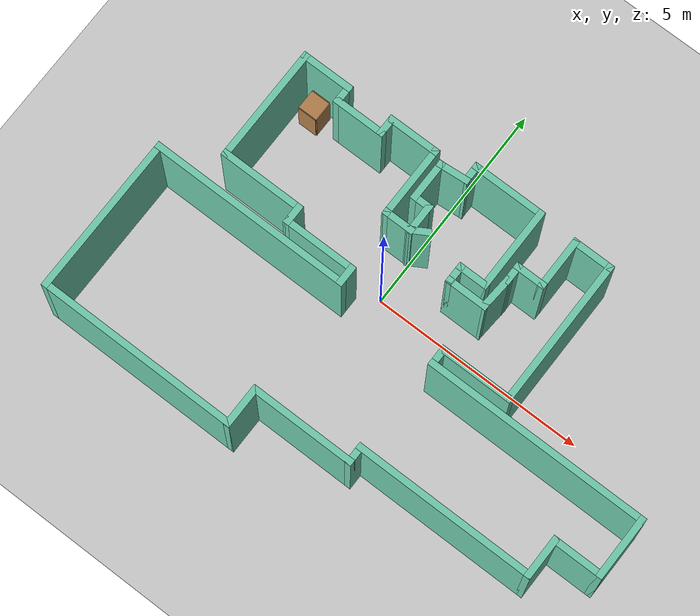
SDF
<sdf version="1.6">
 <world name="default">
  <light name="sun" type="directional">
   <pose>0 0 10 0 -0 0</pose>
   <diffuse>0.8 0.8 0.8 1</diffuse>
   <specular>0.2 0.2 0.2 1</specular>
   <attenuation>
    <range>1000</range>
    <constant>0.9</constant>
    <linear>0.01</linear>
    <quadratic>0.001</quadratic>
   </attenuation>
   <direction>-0.5 0.1 -0.9</direction>
  </light>
  <model name="ground_plane">
   <static>1</static>
   <link name="link">
    <collision name="collision">
     <geometry><plane><normal>0 0 1</normal><size>100 100</size></plane></geometry>
     <surface>
      <contact><collide_bitmask>65535</collide_bitmask></contact>
      <friction><ode><mu>100</mu><mu2>50</mu2></ode></friction>
     </surface>
    </collision>
    <visual name="visual">
     <cast_shadows>0</cast_shadows>
     <geometry><plane><normal>0 0 1</normal><size>100 100</size></plane></geometry>
     <material>
      <script><uri>file://media/materials/scripts/gazebo.material</uri><name>Gazebo/Grey</name></script>
     </material>
    </visual>
   </link>
  </model>
  <gravity>0 0 -9.8</gravity>
  <magnetic_field>6e-06 2.3e-05 -4.2e-05</magnetic_field>
  <atmosphere type="adiabatic"/>
  <physics name="default_physics" default="0" type="ode">
   <max_step_size>0.001</max_step_size>
   <real_time_factor>1</real_time_factor>
   <real_time_update_rate>1000</real_time_update_rate>
  </physics>
  <scene><ambient>0.4 0.4 0.4 1</ambient><background>0.7 0.7 0.7 1</background><shadows>1</shadows></scene>
  <audio><device>default</device></audio>
  <spherical_coordinates>
   <surface_model>EARTH_WGS84</surface_model>
   <latitude_deg>0</latitude_deg>
   <longitude_deg>0</longitude_deg>
   <elevation>0</elevation>
   <heading_deg>0</heading_deg>
  </spherical_coordinates>
  <model name="map_91">
   <pose>0.95965 -0.7141 0 0 -0 0</pose>
   <link name="Wall_0">
    <collision name="Wall_0_Collision">
     <geometry><box><size>1.25 0.15 2.5</size></box></geometry>
     <pose>0 0 1.25 0 -0 0</pose>
    </collision>
    <visual name="Wall_0_Visual">
     <pose>0 0 1.25 0 -0 0</pose>
     <geometry><box><size>1.25 0.15 2.5</size></box></geometry>
     <material>
      <script><uri>file://media/materials/scripts/gazebo.material</uri><name>Gazebo/Grey</name></script>
      <ambient>0.435294 0.796078 0.67451 1</ambient>
     </material>
     <meta><layer>0</layer></meta>
    </visual>
    <pose>-2.175 3.325 0 0 -0 3.14159</pose>
   </link>
   <link name="Wall_1">
    <collision name="Wall_1_Collision">
     <geometry><box><size>0.5 0.15 2.5</size></box></geometry>
     <pose>0 0 1.25 0 -0 0</pose>
    </collision>
    <visual name="Wall_1_Visual">
     <pose>0 0 1.25 0 -0 0</pose>
     <geometry><box><size>0.5 0.15 2.5</size></box></geometry>
     <material>
      <script><uri>file://media/materials/scripts/gazebo.material</uri><name>Gazebo/Grey</name></script>
      <ambient>0.435294 0.796078 0.67451 1</ambient>
     </material>
     <meta><layer>0</layer></meta>
    </visual>
    <pose>-2.725 3.15 0 0 -0 -1.5708</pose>
   </link>
   <link name="Wall_10">
    <collision name="Wall_10_Collision">
     <geometry><box><size>4.75 0.15 2.5</size></box></geometry>
     <pose>0 0 1.25 0 -0 0</pose>
    </collision>
    <visual name="Wall_10_Visual">
     <pose>0 0 1.25 0 -0 0</pose>
     <geometry><box><size>4.75 0.15 2.5</size></box></geometry>
     <material>
      <script><uri>file://media/materials/scripts/gazebo.material</uri><name>Gazebo/Grey</name></script>
      <ambient>0.435294 0.796078 0.67451 1</ambient>
     </material>
     <meta><layer>0</layer></meta>
    </visual>
    <pose>-3.775 0.025 0 0 -0 3.14159</pose>
   </link>
   <link name="Wall_11">
    <collision name="Wall_11_Collision">
     <geometry><box><size>3.75 0.15 2.5</size></box></geometry>
     <pose>0 0 1.25 0 -0 0</pose>
    </collision>
    <visual name="Wall_11_Visual">
     <pose>0 0 1.25 0 -0 0</pose>
     <geometry><box><size>3.75 0.15 2.5</size></box></geometry>
     <material>
      <script><uri>file://media/materials/scripts/gazebo.material</uri><name>Gazebo/Grey</name></script>
      <ambient>0.435294 0.796078 0.67451 1</ambient>
     </material>
     <meta><layer>0</layer></meta>
    </visual>
    <pose>-6.075 -1.775 0 0 -0 -1.5708</pose>
   </link>
   <link name="Wall_12">
    <collision name="Wall_12_Collision">
     <geometry><box><size>4.75 0.15 2.5</size></box></geometry>
     <pose>0 0 1.25 0 -0 0</pose>
    </collision>
    <visual name="Wall_12_Visual">
     <pose>0 0 1.25 0 -0 0</pose>
     <geometry><box><size>4.75 0.15 2.5</size></box></geometry>
     <material>
      <script><uri>file://media/materials/scripts/gazebo.material</uri><name>Gazebo/Grey</name></script>
      <ambient>0.435294 0.796078 0.67451 1</ambient>
     </material>
     <meta><layer>0</layer></meta>
    </visual>
    <pose>-3.775 -3.575 0 0 -0 0</pose>
   </link>
   <link name="Wall_2">
    <collision name="Wall_2_Collision">
     <geometry><box><size>1.25 0.15 2.5</size></box></geometry>
     <pose>0 0 1.25 0 -0 0</pose>
    </collision>
    <visual name="Wall_2_Visual">
     <pose>0 0 1.25 0 -0 0</pose>
     <geometry><box><size>1.25 0.15 2.5</size></box></geometry>
     <material>
      <script><uri>file://media/materials/scripts/gazebo.material</uri><name>Gazebo/Grey</name></script>
      <ambient>0.435294 0.796078 0.67451 1</ambient>
     </material>
     <meta><layer>0</layer></meta>
    </visual>
    <pose>-3.275 2.975 0 0 -0 3.14159</pose>
   </link>
   <link name="Wall_22">
    <collision name="Wall_22_Collision">
     <geometry><box><size>1 0.15 2.5</size></box></geometry>
     <pose>0 0 1.25 0 -0 0</pose>
    </collision>
    <visual name="Wall_22_Visual">
     <pose>0 0 1.25 0 -0 0</pose>
     <geometry><box><size>1 0.15 2.5</size></box></geometry>
     <material>
      <script><uri>file://media/materials/scripts/gazebo.material</uri><name>Gazebo/Grey</name></script>
      <ambient>0.435294 0.796078 0.67451 1</ambient>
     </material>
     <meta><layer>0</layer></meta>
    </visual>
    <pose>-1.475 -3.15 0 0 -0 1.5708</pose>
   </link>
   <link name="Wall_23">
    <collision name="Wall_23_Collision">
     <geometry><box><size>2.5 0.15 2.5</size></box></geometry>
     <pose>0 0 1.25 0 -0 0</pose>
    </collision>
    <visual name="Wall_23_Visual">
     <pose>0 0 1.25 0 -0 0</pose>
     <geometry><box><size>2.5 0.15 2.5</size></box></geometry>
     <material>
      <script><uri>file://media/materials/scripts/gazebo.material</uri><name>Gazebo/Grey</name></script>
      <ambient>0.435294 0.796078 0.67451 1</ambient>
     </material>
     <meta><layer>0</layer></meta>
    </visual>
    <pose>-0.3 -2.725 0 0 -0 0</pose>
   </link>
   <link name="Wall_24">
    <collision name="Wall_24_Collision">
     <geometry><box><size>0.5 0.15 2.5</size></box></geometry>
     <pose>0 0 1.25 0 -0 0</pose>
    </collision>
    <visual name="Wall_24_Visual">
     <pose>0 0 1.25 0 -0 0</pose>
     <geometry><box><size>0.5 0.15 2.5</size></box></geometry>
     <material>
      <script><uri>file://media/materials/scripts/gazebo.material</uri><name>Gazebo/Grey</name></script>
      <ambient>0.435294 0.796078 0.67451 1</ambient>
     </material>
     <meta><layer>0</layer></meta>
    </visual>
    <pose>0.875 -2.55 0 0 -0 1.5708</pose>
   </link>
   <link name="Wall_25">
    <collision name="Wall_25_Collision">
     <geometry><box><size>4.25 0.15 2.5</size></box></geometry>
     <pose>0 0 1.25 0 -0 0</pose>
    </collision>
    <visual name="Wall_25_Visual">
     <pose>0 0 1.25 0 -0 0</pose>
     <geometry><box><size>4.25 0.15 2.5</size></box></geometry>
     <material>
      <script><uri>file://media/materials/scripts/gazebo.material</uri><name>Gazebo/Grey</name></script>
      <ambient>0.435294 0.796078 0.67451 1</ambient>
     </material>
     <meta><layer>0</layer></meta>
    </visual>
    <pose>2.925 -2.375 0 0 -0 0</pose>
   </link>
   <link name="Wall_26">
    <collision name="Wall_26_Collision">
     <geometry><box><size>1 0.15 2.5</size></box></geometry>
     <pose>0 0 1.25 0 -0 0</pose>
    </collision>
    <visual name="Wall_26_Visual">
     <pose>0 0 1.25 0 -0 0</pose>
     <geometry><box><size>1 0.15 2.5</size></box></geometry>
     <material>
      <script><uri>file://media/materials/scripts/gazebo.material</uri><name>Gazebo/Grey</name></script>
      <ambient>0.435294 0.796078 0.67451 1</ambient>
     </material>
     <meta><layer>0</layer></meta>
    </visual>
    <pose>4.975 -1.95 0 0 -0 1.5708</pose>
   </link>
   <link name="Wall_27">
    <collision name="Wall_27_Collision">
     <geometry><box><size>1.25 0.15 2.5</size></box></geometry>
     <pose>0 0 1.25 0 -0 0</pose>
    </collision>
    <visual name="Wall_27_Visual">
     <pose>0 0 1.25 0 -0 0</pose>
     <geometry><box><size>1.25 0.15 2.5</size></box></geometry>
     <material>
      <script><uri>file://media/materials/scripts/gazebo.material</uri><name>Gazebo/Grey</name></script>
      <ambient>0.435294 0.796078 0.67451 1</ambient>
     </material>
     <meta><layer>0</layer></meta>
    </visual>
    <pose>5.525 -1.525 0 0 -0 0</pose>
   </link>
   <link name="Wall_3">
    <collision name="Wall_3_Collision">
     <geometry><box><size>0.5 0.15 2.5</size></box></geometry>
     <pose>0 0 1.25 0 -0 0</pose>
    </collision>
    <visual name="Wall_3_Visual">
     <pose>0 0 1.25 0 -0 0</pose>
     <geometry><box><size>0.5 0.15 2.5</size></box></geometry>
     <material>
      <script><uri>file://media/materials/scripts/gazebo.material</uri><name>Gazebo/Grey</name></script>
      <ambient>0.435294 0.796078 0.67451 1</ambient>
     </material>
     <meta><layer>0</layer></meta>
    </visual>
    <pose>-3.825 3.15 0 0 -0 1.5708</pose>
   </link>
   <link name="Wall_33">
    <collision name="Wall_33_Collision">
     <geometry><box><size>1 0.15 2.5</size></box></geometry>
     <pose>0 0 1.25 0 -0 0</pose>
    </collision>
    <visual name="Wall_33_Visual">
     <pose>0 0 1.25 0 -0 0</pose>
     <geometry><box><size>1 0.15 2.5</size></box></geometry>
     <material>
      <script><uri>file://media/materials/scripts/gazebo.material</uri><name>Gazebo/Grey</name></script>
      <ambient>0.435294 0.796078 0.67451 1</ambient>
     </material>
     <meta><layer>0</layer></meta>
    </visual>
    <pose>2.15 3.525 0 0 -0 3.14159</pose>
   </link>
   <link name="Wall_4">
    <collision name="Wall_4_Collision">
     <geometry><box><size>1.25 0.15 2.5</size></box></geometry>
     <pose>0 0 1.25 0 -0 0</pose>
    </collision>
    <visual name="Wall_4_Visual">
     <pose>0 0 1.25 0 -0 0</pose>
     <geometry><box><size>1.25 0.15 2.5</size></box></geometry>
     <material>
      <script><uri>file://media/materials/scripts/gazebo.material</uri><name>Gazebo/Grey</name></script>
      <ambient>0.435294 0.796078 0.67451 1</ambient>
     </material>
     <meta><layer>0</layer></meta>
    </visual>
    <pose>-4.375 3.325 0 0 -0 3.14159</pose>
   </link>
   <link name="Wall_45">
    <collision name="Wall_45_Collision">
     <geometry><box><size>1.25 0.15 2.5</size></box></geometry>
     <pose>0 0 1.25 0 -0 0</pose>
    </collision>
    <visual name="Wall_45_Visual">
     <pose>0 0 1.25 0 -0 0</pose>
     <geometry><box><size>1.25 0.15 2.5</size></box></geometry>
     <material>
      <script><uri>file://media/materials/scripts/gazebo.material</uri><name>Gazebo/Grey</name></script>
      <ambient>0.435294 0.796078 0.67451 1</ambient>
     </material>
     <meta><layer>0</layer></meta>
    </visual>
    <pose>1.725 2.975 0 0 -0 -1.5708</pose>
   </link>
   <link name="Wall_46">
    <collision name="Wall_46_Collision">
     <geometry><box><size>0.75 0.15 2.5</size></box></geometry>
     <pose>0 0 1.25 0 -0 0</pose>
    </collision>
    <visual name="Wall_46_Visual">
     <pose>0 0 1.25 0 -0 0</pose>
     <geometry><box><size>0.75 0.15 2.5</size></box></geometry>
     <material>
      <script><uri>file://media/materials/scripts/gazebo.material</uri><name>Gazebo/Grey</name></script>
      <ambient>0.435294 0.796078 0.67451 1</ambient>
     </material>
     <meta><layer>0</layer></meta>
    </visual>
    <pose>1.425 2.425 0 0 -0 3.14159</pose>
   </link>
   <link name="Wall_47">
    <collision name="Wall_47_Collision">
     <geometry><box><size>0.5 0.15 2.5</size></box></geometry>
     <pose>0 0 1.25 0 -0 0</pose>
    </collision>
    <visual name="Wall_47_Visual">
     <pose>0 0 1.25 0 -0 0</pose>
     <geometry><box><size>0.5 0.15 2.5</size></box></geometry>
     <material>
      <script><uri>file://media/materials/scripts/gazebo.material</uri><name>Gazebo/Grey</name></script>
      <ambient>0.435294 0.796078 0.67451 1</ambient>
     </material>
     <meta><layer>0</layer></meta>
    </visual>
    <pose>1.125 2.25 0 0 -0 -1.5708</pose>
   </link>
   <link name="Wall_5">
    <collision name="Wall_5_Collision">
     <geometry><box><size>2.75 0.15 2.5</size></box></geometry>
     <pose>0 0 1.25 0 -0 0</pose>
    </collision>
    <visual name="Wall_5_Visual">
     <pose>0 0 1.25 0 -0 0</pose>
     <geometry><box><size>2.75 0.15 2.5</size></box></geometry>
     <material>
      <script><uri>file://media/materials/scripts/gazebo.material</uri><name>Gazebo/Grey</name></script>
      <ambient>0.435294 0.796078 0.67451 1</ambient>
     </material>
     <meta><layer>0</layer></meta>
    </visual>
    <pose>-4.925 2.025 0 0 -0 -1.5708</pose>
   </link>
   <link name="Wall_6">
    <collision name="Wall_6_Collision">
     <geometry><box><size>2 0.15 2.5</size></box></geometry>
     <pose>0 0 1.25 0 -0 0</pose>
    </collision>
    <visual name="Wall_6_Visual">
     <pose>0 0 1.25 0 -0 0</pose>
     <geometry><box><size>2 0.15 2.5</size></box></geometry>
     <material>
      <script><uri>file://media/materials/scripts/gazebo.material</uri><name>Gazebo/Grey</name></script>
      <ambient>0.435294 0.796078 0.67451 1</ambient>
     </material>
     <meta><layer>0</layer></meta>
    </visual>
    <pose>-4 0.725 0 0 -0 0</pose>
   </link>
   <link name="Wall_63">
    <collision name="Wall_63_Collision">
     <geometry><box><size>0.5 0.15 2.5</size></box></geometry>
     <pose>0 0 1.25 0 -0 0</pose>
    </collision>
    <visual name="Wall_63_Visual">
     <pose>0 0 1.25 0 -0 0</pose>
     <geometry><box><size>0.5 0.15 2.5</size></box></geometry>
     <material>
      <script><uri>file://media/materials/scripts/gazebo.material</uri><name>Gazebo/Grey</name></script>
      <ambient>0.435294 0.796078 0.67451 1</ambient>
     </material>
     <meta><layer>0</layer></meta>
    </visual>
    <pose>-0.775 3.4 0 0 -0 1.5708</pose>
   </link>
   <link name="Wall_64">
    <collision name="Wall_64_Collision">
     <geometry><box><size>1.75 0.15 2.5</size></box></geometry>
     <pose>0 0 1.25 0 -0 0</pose>
    </collision>
    <visual name="Wall_64_Visual">
     <pose>0 0 1.25 0 -0 0</pose>
     <geometry><box><size>1.75 0.15 2.5</size></box></geometry>
     <material>
      <script><uri>file://media/materials/scripts/gazebo.material</uri><name>Gazebo/Grey</name></script>
      <ambient>0.435294 0.796078 0.67451 1</ambient>
     </material>
     <meta><layer>0</layer></meta>
    </visual>
    <pose>0.025 3.575 0 0 -0 0</pose>
   </link>
   <link name="Wall_65">
    <collision name="Wall_65_Collision">
     <geometry><box><size>2 0.15 2.5</size></box></geometry>
     <pose>0 0 1.25 0 -0 0</pose>
    </collision>
    <visual name="Wall_65_Visual">
     <pose>0 0 1.25 0 -0 0</pose>
     <geometry><box><size>2 0.15 2.5</size></box></geometry>
     <material>
      <script><uri>file://media/materials/scripts/gazebo.material</uri><name>Gazebo/Grey</name></script>
      <ambient>0.435294 0.796078 0.67451 1</ambient>
     </material>
     <meta><layer>0</layer></meta>
    </visual>
    <pose>0.825 2.65 0 0 -0 -1.5708</pose>
   </link>
   <link name="Wall_66">
    <collision name="Wall_66_Collision">
     <geometry><box><size>0.75 0.15 2.5</size></box></geometry>
     <pose>0 0 1.25 0 -0 0</pose>
    </collision>
    <visual name="Wall_66_Visual">
     <pose>0 0 1.25 0 -0 0</pose>
     <geometry><box><size>0.75 0.15 2.5</size></box></geometry>
     <material>
      <script><uri>file://media/materials/scripts/gazebo.material</uri><name>Gazebo/Grey</name></script>
      <ambient>0.435294 0.796078 0.67451 1</ambient>
     </material>
     <meta><layer>0</layer></meta>
    </visual>
    <pose>0.525 1.725 0 0 -0 3.14159</pose>
   </link>
   <link name="Wall_69">
    <collision name="Wall_69_Collision">
     <geometry><box><size>0.5 0.15 2.5</size></box></geometry>
     <pose>0 0 1.25 0 -0 0</pose>
    </collision>
    <visual name="Wall_69_Visual">
     <pose>0 0 1.25 0 -0 0</pose>
     <geometry><box><size>0.5 0.15 2.5</size></box></geometry>
     <material>
      <script><uri>file://media/materials/scripts/gazebo.material</uri><name>Gazebo/Grey</name></script>
      <ambient>0.435294 0.796078 0.67451 1</ambient>
     </material>
     <meta><layer>0</layer></meta>
    </visual>
    <pose>0.225 1.55 0 0 -0 -1.5708</pose>
   </link>
   <link name="Wall_7">
    <collision name="Wall_7_Collision">
     <geometry><box><size>0.5 0.15 2.5</size></box></geometry>
     <pose>0 0 1.25 0 -0 0</pose>
    </collision>
    <visual name="Wall_7_Visual">
     <pose>0 0 1.25 0 -0 0</pose>
     <geometry><box><size>0.5 0.15 2.5</size></box></geometry>
     <material>
      <script><uri>file://media/materials/scripts/gazebo.material</uri><name>Gazebo/Grey</name></script>
      <ambient>0.435294 0.796078 0.67451 1</ambient>
     </material>
     <meta><layer>0</layer></meta>
    </visual>
    <pose>-3.075 0.55 0 0 -0 -1.5708</pose>
   </link>
   <link name="Wall_70">
    <collision name="Wall_70_Collision">
     <geometry><box><size>1 0.15 2.5</size></box></geometry>
     <pose>0 0 1.25 0 -0 0</pose>
    </collision>
    <visual name="Wall_70_Visual">
     <pose>0 0 1.25 0 -0 0</pose>
     <geometry><box><size>1 0.15 2.5</size></box></geometry>
     <material>
      <script><uri>file://media/materials/scripts/gazebo.material</uri><name>Gazebo/Grey</name></script>
      <ambient>0.435294 0.796078 0.67451 1</ambient>
     </material>
     <meta><layer>0</layer></meta>
    </visual>
    <pose>0.65 1.375 0 0 -0 0</pose>
   </link>
   <link name="Wall_71">
    <collision name="Wall_71_Collision">
     <geometry><box><size>0.851783 0.15 2.5</size></box></geometry>
     <pose>0 0 1.25 0 -0 0</pose>
    </collision>
    <visual name="Wall_71_Visual">
     <pose>0 0 1.25 0 -0 0</pose>
     <geometry><box><size>0.851783 0.15 2.5</size></box></geometry>
     <material>
      <script><uri>file://media/materials/scripts/gazebo.material</uri><name>Gazebo/Grey</name></script>
      <ambient>0.435294 0.796078 0.67451 1</ambient>
     </material>
     <meta><layer>0</layer></meta>
    </visual>
    <pose>1.1 1.725 0 0 -0 1.49949</pose>
   </link>
   <link name="Wall_73">
    <collision name="Wall_73_Collision">
     <geometry><box><size>3.5 0.15 2.5</size></box></geometry>
     <pose>0 0 1.25 0 -0 0</pose>
    </collision>
    <visual name="Wall_73_Visual">
     <pose>0 0 1.25 0 -0 0</pose>
     <geometry><box><size>3.5 0.15 2.5</size></box></geometry>
     <material>
      <script><uri>file://media/materials/scripts/gazebo.material</uri><name>Gazebo/Grey</name></script>
      <ambient>0.435294 0.796078 0.67451 1</ambient>
     </material>
     <meta><layer>0</layer></meta>
    </visual>
    <pose>2.575 1.85 0 0 -0 -1.5708</pose>
   </link>
   <link name="Wall_74">
    <collision name="Wall_74_Collision">
     <geometry><box><size>1.75 0.15 2.5</size></box></geometry>
     <pose>0 0 1.25 0 -0 0</pose>
    </collision>
    <visual name="Wall_74_Visual">
     <pose>0 0 1.25 0 -0 0</pose>
     <geometry><box><size>1.75 0.15 2.5</size></box></geometry>
     <material>
      <script><uri>file://media/materials/scripts/gazebo.material</uri><name>Gazebo/Grey</name></script>
      <ambient>0.435294 0.796078 0.67451 1</ambient>
     </material>
     <meta><layer>0</layer></meta>
    </visual>
    <pose>1.775 0.175 0 0 -0 3.14159</pose>
   </link>
   <link name="Wall_75">
    <collision name="Wall_75_Collision">
     <geometry><box><size>0.5 0.15 2.5</size></box></geometry>
     <pose>0 0 1.25 0 -0 0</pose>
    </collision>
    <visual name="Wall_75_Visual">
     <pose>0 0 1.25 0 -0 0</pose>
     <geometry><box><size>0.5 0.15 2.5</size></box></geometry>
     <material>
      <script><uri>file://media/materials/scripts/gazebo.material</uri><name>Gazebo/Grey</name></script>
      <ambient>0.435294 0.796078 0.67451 1</ambient>
     </material>
     <meta><layer>0</layer></meta>
    </visual>
    <pose>0.975 0 0 0 -0 -1.5708</pose>
   </link>
   <link name="Wall_77">
    <collision name="Wall_77_Collision">
     <geometry><box><size>5.25 0.15 2.5</size></box></geometry>
     <pose>0 0 1.25 0 -0 0</pose>
    </collision>
    <visual name="Wall_77_Visual">
     <pose>0 0 1.25 0 -0 0</pose>
     <geometry><box><size>5.25 0.15 2.5</size></box></geometry>
     <material>
      <script><uri>file://media/materials/scripts/gazebo.material</uri><name>Gazebo/Grey</name></script>
      <ambient>0.435294 0.796078 0.67451 1</ambient>
     </material>
     <meta><layer>0</layer></meta>
    </visual>
    <pose>3.525 -0.175 0 0 -0 0</pose>
   </link>
   <link name="Wall_78">
    <collision name="Wall_78_Collision">
     <geometry><box><size>1.5 0.15 2.5</size></box></geometry>
     <pose>0 0 1.25 0 -0 0</pose>
    </collision>
    <visual name="Wall_78_Visual">
     <pose>0 0 1.25 0 -0 0</pose>
     <geometry><box><size>1.5 0.15 2.5</size></box></geometry>
     <material>
      <script><uri>file://media/materials/scripts/gazebo.material</uri><name>Gazebo/Grey</name></script>
      <ambient>0.435294 0.796078 0.67451 1</ambient>
     </material>
     <meta><layer>0</layer></meta>
    </visual>
    <pose>6.075 -0.85 0 0 -0 -1.5708</pose>
   </link>
   <link name="Wall_8">
    <collision name="Wall_8_Collision">
     <geometry><box><size>1.75 0.15 2.5</size></box></geometry>
     <pose>0 0 1.25 0 -0 0</pose>
    </collision>
    <visual name="Wall_8_Visual">
     <pose>0 0 1.25 0 -0 0</pose>
     <geometry><box><size>1.75 0.15 2.5</size></box></geometry>
     <material>
      <script><uri>file://media/materials/scripts/gazebo.material</uri><name>Gazebo/Grey</name></script>
      <ambient>0.435294 0.796078 0.67451 1</ambient>
     </material>
     <meta><layer>0</layer></meta>
    </visual>
    <pose>-2.275 0.375 0 0 -0 0</pose>
   </link>
   <link name="Wall_83">
    <collision name="Wall_83_Collision">
     <geometry><box><size>1.75 0.15 2.5</size></box></geometry>
     <pose>0 0 1.25 0 -0 0</pose>
    </collision>
    <visual name="Wall_83_Visual">
     <pose>0 0 1.25 0 -0 0</pose>
     <geometry><box><size>1.75 0.15 2.5</size></box></geometry>
     <material>
      <script><uri>file://media/materials/scripts/gazebo.material</uri><name>Gazebo/Grey</name></script>
      <ambient>0.435294 0.796078 0.67451 1</ambient>
     </material>
     <meta><layer>0</layer></meta>
    </visual>
    <pose>-1.625 2.525 0 0 -0 -1.5708</pose>
   </link>
   <link name="Wall_84">
    <collision name="Wall_84_Collision">
     <geometry><box><size>0.75 0.15 2.5</size></box></geometry>
     <pose>0 0 1.25 0 -0 0</pose>
    </collision>
    <visual name="Wall_84_Visual">
     <pose>0 0 1.25 0 -0 0</pose>
     <geometry><box><size>0.75 0.15 2.5</size></box></geometry>
     <material>
      <script><uri>file://media/materials/scripts/gazebo.material</uri><name>Gazebo/Grey</name></script>
      <ambient>0.435294 0.796078 0.67451 1</ambient>
     </material>
     <meta><layer>0</layer></meta>
    </visual>
    <pose>-1.325 1.725 0 0 -0 0</pose>
   </link>
   <link name="Wall_85">
    <collision name="Wall_85_Collision">
     <geometry><box><size>0.75 0.15 2.5</size></box></geometry>
     <pose>0 0 1.25 0 -0 0</pose>
    </collision>
    <visual name="Wall_85_Visual">
     <pose>0 0 1.25 0 -0 0</pose>
     <geometry><box><size>0.75 0.15 2.5</size></box></geometry>
     <material>
      <script><uri>file://media/materials/scripts/gazebo.material</uri><name>Gazebo/Grey</name></script>
      <ambient>0.435294 0.796078 0.67451 1</ambient>
     </material>
     <meta><layer>0</layer></meta>
    </visual>
    <pose>-1.025 2.025 0 0 -0 1.5708</pose>
   </link>
   <link name="Wall_86">
    <collision name="Wall_86_Collision">
     <geometry><box><size>0.5 0.15 2.5</size></box></geometry>
     <pose>0 0 1.25 0 -0 0</pose>
    </collision>
    <visual name="Wall_86_Visual">
     <pose>0 0 1.25 0 -0 0</pose>
     <geometry><box><size>0.5 0.15 2.5</size></box></geometry>
     <material>
      <script><uri>file://media/materials/scripts/gazebo.material</uri><name>Gazebo/Grey</name></script>
      <ambient>0.435294 0.796078 0.67451 1</ambient>
     </material>
     <meta><layer>0</layer></meta>
    </visual>
    <pose>-1.2 2.325 0 0 -0 3.14159</pose>
   </link>
   <link name="Wall_89">
    <collision name="Wall_89_Collision">
     <geometry><box><size>1 0.15 2.5</size></box></geometry>
     <pose>0 0 1.25 0 -0 0</pose>
    </collision>
    <visual name="Wall_89_Visual">
     <pose>0 0 1.25 0 -0 0</pose>
     <geometry><box><size>1 0.15 2.5</size></box></geometry>
     <material>
      <script><uri>file://media/materials/scripts/gazebo.material</uri><name>Gazebo/Grey</name></script>
      <ambient>0.435294 0.796078 0.67451 1</ambient>
     </material>
     <meta><layer>0</layer></meta>
    </visual>
    <pose>-1.375 2.75 0 0 -0 1.5708</pose>
   </link>
   <link name="Wall_9">
    <collision name="Wall_9_Collision">
     <geometry><box><size>0.5 0.15 2.5</size></box></geometry>
     <pose>0 0 1.25 0 -0 0</pose>
    </collision>
    <visual name="Wall_9_Visual">
     <pose>0 0 1.25 0 -0 0</pose>
     <geometry><box><size>0.5 0.15 2.5</size></box></geometry>
     <material>
      <script><uri>file://media/materials/scripts/gazebo.material</uri><name>Gazebo/Grey</name></script>
      <ambient>0.435294 0.796078 0.67451 1</ambient>
     </material>
     <meta><layer>0</layer></meta>
    </visual>
    <pose>-1.475 0.2 0 0 -0 -1.5708</pose>
   </link>
   <link name="Wall_90">
    <collision name="Wall_90_Collision">
     <geometry><box><size>0.75208 0.15 2.5</size></box></geometry>
     <pose>0 0 1.25 0 -0 0</pose>
    </collision>
    <visual name="Wall_90_Visual">
     <pose>0 0 1.25 0 -0 0</pose>
     <geometry><box><size>0.75208 0.15 2.5</size></box></geometry>
     <material>
      <script><uri>file://media/materials/scripts/gazebo.material</uri><name>Gazebo/Grey</name></script>
      <ambient>0.435294 0.796078 0.67451 1</ambient>
     </material>
     <meta><layer>0</layer></meta>
    </visual>
    <pose>-1.075 3.2 0 0 -0 0.083141</pose>
   </link>
   <link name="Wall_92">
    <collision name="Wall_92_Collision">
     <geometry><box><size>0.5 0.15 2.5</size></box></geometry>
     <pose>0 0 1.25 0 -0 0</pose>
    </collision>
    <visual name="Wall_92_Visual">
     <pose>0 0 1.25 0 -0 0</pose>
     <geometry><box><size>0.5 0.15 2.5</size></box></geometry>
     <material>
      <script><uri>file://media/materials/scripts/gazebo.material</uri><name>Gazebo/Grey</name></script>
      <ambient>0.435294 0.796078 0.67451 1</ambient>
     </material>
     <meta><layer>0</layer></meta>
    </visual>
    <pose>-0.873445 1.8125 0 0 -0 0.523599</pose>
   </link>
   <static>1</static>
  </model>
  <model name="cabinet">
   <static>1</static>
   <link name="cabinet_bottom_plate">
    <inertial>
     <pose>0 0 -1 0 -0 0</pose>
     <inertia><ixx>2.05</ixx><ixy>0</ixy><ixz>0</ixz><iyy>2.05</iyy><iyz>0</iyz><izz>2.05</izz></inertia>
     <mass>25</mass>
    </inertial>
    <collision name="cabinet_bottom_plate_geom">
     <pose>0 0 0.01 0 -0 0</pose>
     <geometry><box><size>0.45 0.45 0.02</size></box></geometry>
    </collision>
    <visual name="cabinet_bottom_plate_geom_visual">
     <pose>0 0 0.01 0 -0 0</pose>
     <geometry><box><size>0.45 0.45 0.02</size></box></geometry>
     <material>
      <script><uri>file://media/materials/scripts/gazebo.material</uri><name>Gazebo/Wood</name></script>
     </material>
    </visual>
    <collision name="cabinet_bottom_plate_geom_cabinet_back_plate">
     <pose>0.235 0 0.51 0 -0 0</pose>
     <geometry><box><size>0.02 0.45 1.02</size></box></geometry>
    </collision>
    <visual name="cabinet_bottom_plate_geom_cabinet_back_plate_visual">
     <pose>0.235 0 0.51 0 -0 0</pose>
     <geometry><box><size>0.02 0.45 1.02</size></box></geometry>
     <material>
      <script><uri>file://media/materials/scripts/gazebo.material</uri><name>Gazebo/Wood</name></script>
     </material>
    </visual>
    <collision name="cabinet_bottom_plate_geom_cabinet_left_plate">
     <pose>0 0.235 0.51 0 -0 0</pose>
     <geometry><box><size>0.45 0.02 1.02</size></box></geometry>
    </collision>
    <visual name="cabinet_bottom_plate_geom_cabinet_left_plate_visual">
     <pose>0 0.235 0.51 0 -0 0</pose>
     <geometry><box><size>0.45 0.02 1.02</size></box></geometry>
     <material>
      <script><uri>file://media/materials/scripts/gazebo.material</uri><name>Gazebo/Wood</name></script>
     </material>
    </visual>
    <collision name="cabinet_bottom_plate_geom_cabinet_middle_plate">
     <pose>0 0 0.51 0 -0 0</pose>
     <geometry><box><size>0.45 0.45 0.02</size></box></geometry>
    </collision>
    <visual name="cabinet_bottom_plate_geom_cabinet_middle_plate_visual">
     <pose>0 0 0.51 0 -0 0</pose>
     <geometry><box><size>0.45 0.45 0.02</size></box></geometry>
     <material>
      <script><uri>file://media/materials/scripts/gazebo.material</uri><name>Gazebo/Wood</name></script>
     </material>
    </visual>
    <collision name="cabinet_bottom_plate_geom_cabinet_right_plate">
     <pose>0 -0.235 0.51 0 -0 0</pose>
     <geometry><box><size>0.45 0.02 1.02</size></box></geometry>
    </collision>
    <visual name="cabinet_bottom_plate_geom_cabinet_right_plate_visual">
     <pose>0 -0.235 0.51 0 -0 0</pose>
     <geometry><box><size>0.45 0.02 1.02</size></box></geometry>
     <material>
      <script><uri>file://media/materials/scripts/gazebo.material</uri><name>Gazebo/Wood</name></script>
     </material>
    </visual>
    <collision name="cabinet_bottom_plate_geom_cabinet_top_plate">
     <pose>0 0 1.01 0 -0 0</pose>
     <geometry><box><size>0.45 0.45 0.02</size></box></geometry>
    </collision>
    <visual name="cabinet_bottom_plate_geom_cabinet_top_plate_visual">
     <pose>0 0 1.01 0 -0 0</pose>
     <geometry><box><size>0.45 0.45 0.02</size></box></geometry>
     <material>
      <script><uri>file://media/materials/scripts/gazebo.material</uri><name>Gazebo/Wood</name></script>
     </material>
    </visual>
   </link>
   <pose>-3.4941 2.26479 0 0 -0 0</pose>
  </model>
  <model name="6_Cube_StorageE">
   <link name="Wall_0">
    <pose>0 0 0.01 0 -0 0</pose>
    <inertial>
     <mass>1.6201</mass>
     <inertia><ixx>0.0119</ixx><iyy>0.0631</iyy><izz>0.0513</izz><ixy>0</ixy><ixz>0</ixz><iyz>0</iyz></inertia>
    </inertial>
    <collision name="Wall_0_Collision"><geometry><box><size>0.616 0.296 0.02</size></box></geometry></collision>
    <visual name="Wall_0_Visual">
     <geometry><box><size>0.616 0.296 0.02</size></box></geometry>
     <material>
      <script><uri>file://media/materials/scripts/gazebo.material</uri><name>Gazebo/Grey</name></script>
      <ambient>0.105882 0.0509804 0 1</ambient>
     </material>
    </visual>
   </link>
   <joint name="0_2" type="fixed">
    <pose>-0.308 0 0 0 -0 0</pose>
    <parent>Wall_2</parent>
    <child>Wall_0</child>
    <axis>
     <xyz>1 0 0</xyz>
     <use_parent_model_frame>0</use_parent_model_frame>
     <limit><lower>-1e+16</lower><upper>1e+16</upper></limit>
    </axis>
   </joint>
   <joint name="0_12" type="fixed">
    <parent>Wall_12</parent>
    <child>Wall_0</child>
    <axis>
     <xyz>0 0 1</xyz>
     <use_parent_model_frame>0</use_parent_model_frame>
     <limit><lower>-1e+16</lower><upper>1e+16</upper></limit>
    </axis>
   </joint>
   <joint name="0_4" type="fixed">
    <pose>0.308 0 0 0 -0 0</pose>
    <parent>Wall_4</parent>
    <child>Wall_0</child>
    <axis>
     <xyz>1 0 0</xyz>
     <use_parent_model_frame>0</use_parent_model_frame>
     <limit><lower>-1e+16</lower><upper>1e+16</upper></limit>
    </axis>
   </joint>
   <link name="Wall_10">
    <pose>0 0 0.61 0 -0 0</pose>
    <inertial>
     <mass>1.6201</mass>
     <inertia><ixx>0.0119</ixx><iyy>0.0631</iyy><izz>0.0513</izz><ixy>0</ixy><ixz>0</ixz><iyz>0</iyz></inertia>
    </inertial>
    <collision name="Wall_10_Collision"><geometry><box><size>0.616 0.296 0.02</size></box></geometry></collision>
    <visual name="Wall_10_Visual">
     <geometry><box><size>0.616 0.296 0.02</size></box></geometry>
     <material>
      <script><uri>file://media/materials/scripts/gazebo.material</uri><name>Gazebo/Grey</name></script>
      <ambient>0.105882 0.0509804 0 1</ambient>
     </material>
    </visual>
   </link>
   <joint name="10_2" type="fixed">
    <pose>-0.308 0 0 0 -0 0</pose>
    <parent>Wall_2</parent>
    <child>Wall_10</child>
    <axis>
     <xyz>1 0 0</xyz>
     <use_parent_model_frame>0</use_parent_model_frame>
     <limit><lower>-1e+16</lower><upper>1e+16</upper></limit>
    </axis>
   </joint>
   <joint name="10_12" type="fixed">
    <parent>Wall_12</parent>
    <child>Wall_10</child>
    <axis>
     <xyz>0 0 1</xyz>
     <use_parent_model_frame>0</use_parent_model_frame>
     <limit><lower>-1e+16</lower><upper>1e+16</upper></limit>
    </axis>
   </joint>
   <joint name="10_4" type="fixed">
    <pose>0.308 0 0 0 -0 0</pose>
    <parent>Wall_4</parent>
    <child>Wall_10</child>
    <axis>
     <xyz>1 0 0</xyz>
     <use_parent_model_frame>0</use_parent_model_frame>
     <limit><lower>-1e+16</lower><upper>1e+16</upper></limit>
    </axis>
   </joint>
   <link name="Wall_12">
    <pose>0 0 0.4575 0 -0 0</pose>
    <inertial>
     <mass>2.4065</mass>
     <inertia><ixx>0.0177</ixx><iyy>0.1855</iyy><izz>0.168</izz><ixy>0</ixy><ixz>0</ixz><iyz>0</iyz></inertia>
    </inertial>
    <collision name="Wall_12_Collision"><geometry><box><size>0.02 0.296 0.915</size></box></geometry></collision>
    <visual name="Wall_12_Visual">
     <geometry><box><size>0.02 0.296 0.915</size></box></geometry>
     <material>
      <script><uri>file://media/materials/scripts/gazebo.material</uri><name>Gazebo/Grey</name></script>
      <ambient>0.105882 0.0509804 0 1</ambient>
     </material>
    </visual>
   </link>
   <link name="Wall_2">
    <pose>-0.298 0 0.4575 0 -0 0</pose>
    <inertial>
     <mass>2.4065</mass>
     <inertia><ixx>0.0177</ixx><iyy>0.1855</iyy><izz>0.168</izz><ixy>0</ixy><ixz>0</ixz><iyz>0</iyz></inertia>
    </inertial>
    <collision name="Wall_2_Collision"><geometry><box><size>0.02 0.296 0.915</size></box></geometry></collision>
    <visual name="Wall_2_Visual">
     <geometry><box><size>0.02 0.296 0.915</size></box></geometry>
     <material>
      <script><uri>file://media/materials/scripts/gazebo.material</uri><name>Gazebo/Grey</name></script>
      <ambient>0.105882 0.0509804 0 1</ambient>
     </material>
    </visual>
   </link>
   <link name="Wall_4">
    <pose>0.298 0 0.4575 0 -0 0</pose>
    <inertial>
     <mass>2.4065</mass>
     <inertia><ixx>0.0177</ixx><iyy>0.1855</iyy><izz>0.168</izz><ixy>0</ixy><ixz>0</ixz><iyz>0</iyz></inertia>
    </inertial>
    <collision name="Wall_4_Collision"><geometry><box><size>0.02 0.296 0.915</size></box></geometry></collision>
    <visual name="Wall_4_Visual">
     <geometry><box><size>0.02 0.296 0.915</size></box></geometry>
     <material>
      <script><uri>file://media/materials/scripts/gazebo.material</uri><name>Gazebo/Grey</name></script>
      <ambient>0.105882 0.0509804 0 1</ambient>
     </material>
    </visual>
   </link>
   <link name="Wall_6">
    <pose>0 0 0.905 0 -0 0</pose>
    <inertial>
     <mass>1.6201</mass>
     <inertia><ixx>0.0119</ixx><iyy>0.0631</iyy><izz>0.0513</izz><ixy>0</ixy><ixz>0</ixz><iyz>0</iyz></inertia>
    </inertial>
    <collision name="Wall_6_Collision"><geometry><box><size>0.616 0.296 0.02</size></box></geometry></collision>
    <visual name="Wall_6_Visual">
     <geometry><box><size>0.616 0.296 0.02</size></box></geometry>
     <material>
      <script><uri>file://media/materials/scripts/gazebo.material</uri><name>Gazebo/Grey</name></script>
      <ambient>0.105882 0.0509804 0 1</ambient>
     </material>
    </visual>
   </link>
   <joint name="6_2" type="fixed">
    <pose>-0.308 0 0 0 -0 0</pose>
    <parent>Wall_2</parent>
    <child>Wall_6</child>
    <axis>
     <xyz>2 0 0</xyz>
     <use_parent_model_frame>0</use_parent_model_frame>
     <limit><lower>-1e+16</lower><upper>1e+16</upper></limit>
    </axis>
   </joint>
   <joint name="6_12" type="fixed">
    <parent>Wall_12</parent>
    <child>Wall_6</child>
    <axis>
     <xyz>0 0 1</xyz>
     <use_parent_model_frame>0</use_parent_model_frame>
     <limit><lower>-1e+16</lower><upper>1e+16</upper></limit>
    </axis>
   </joint>
   <joint name="6_4" type="fixed">
    <pose>0.308 0 0 0 -0 0</pose>
    <parent>Wall_4</parent>
    <child>Wall_6</child>
    <axis>
     <xyz>1 0 0</xyz>
     <use_parent_model_frame>0</use_parent_model_frame>
     <limit><lower>-1e+16</lower><upper>1e+16</upper></limit>
    </axis>
   </joint>
   <link name="Wall_8">
    <pose>0 0 0.305 0 -0 0</pose>
    <inertial>
     <mass>1.6201</mass>
     <inertia><ixx>0.0119</ixx><iyy>0.0631</iyy><izz>0.0513</izz><ixy>0</ixy><ixz>0</ixz><iyz>0</iyz></inertia>
    </inertial>
    <collision name="Wall_8_Collision"><geometry><box><size>0.616 0.296 0.02</size></box></geometry></collision>
    <visual name="Wall_8_Visual">
     <geometry><box><size>0.616 0.296 0.02</size></box></geometry>
     <material>
      <script><uri>file://media/materials/scripts/gazebo.material</uri><name>Gazebo/Grey</name></script>
      <ambient>0.105882 0.0509804 0 1</ambient>
     </material>
    </visual>
   </link>
   <joint name="8_2" type="fixed">
    <pose>-0.308 0 0 0 -0 0</pose>
    <parent>Wall_2</parent>
    <child>Wall_8</child>
    <axis>
     <xyz>1 0 0</xyz>
     <use_parent_model_frame>0</use_parent_model_frame>
     <limit><lower>-1e+16</lower><upper>1e+16</upper></limit>
    </axis>
   </joint>
   <joint name="8_12" type="fixed">
    <parent>Wall_12</parent>
    <child>Wall_8</child>
    <axis>
     <xyz>0 0 1</xyz>
     <use_parent_model_frame>0</use_parent_model_frame>
     <limit><lower>-1e+16</lower><upper>1e+16</upper></limit>
    </axis>
   </joint>
   <joint name="8_4" type="fixed">
    <pose>0.308 0 0 0 -0 0</pose>
    <parent>Wall_4</parent>
    <child>Wall_8</child>
    <axis>
     <xyz>1 0 0</xyz>
     <use_parent_model_frame>0</use_parent_model_frame>
     <limit><lower>-1e+16</lower><upper>1e+16</upper></limit>
    </axis>
   </joint>
   <static>1</static>
   <pose>-2.63151 0.196585 0 0 -0 0</pose>
  </model>
 </world>
</sdf>
